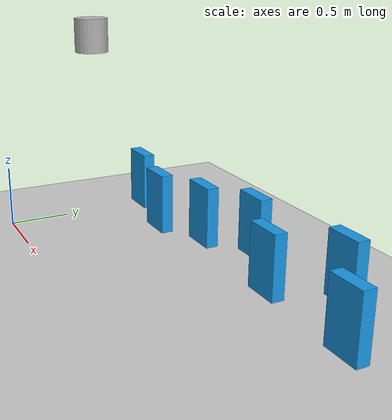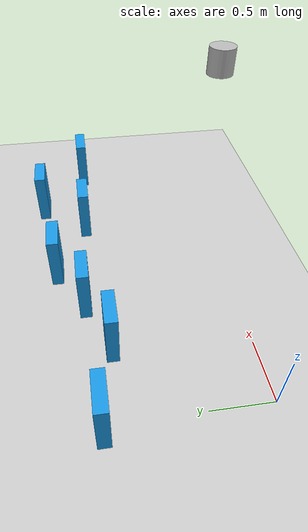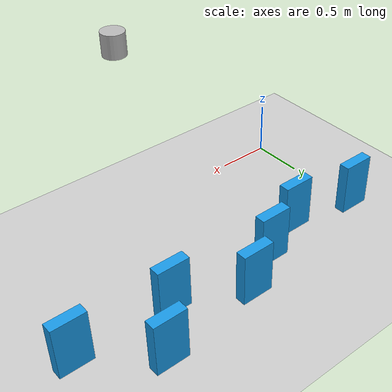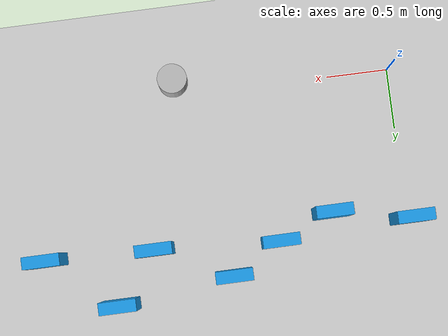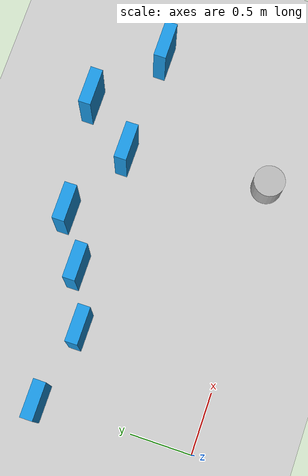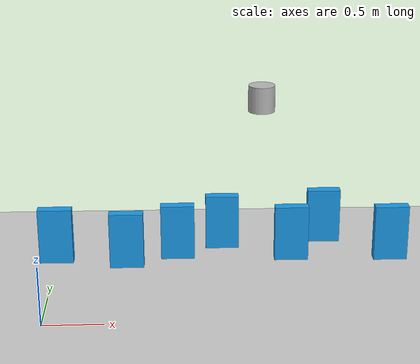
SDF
<sdf version="1.7">
 <world name="default">
  <light name="sun" type="directional">
   <pose>0 0 10 0 -0 0</pose>
   <diffuse>0.8 0.8 0.8 1</diffuse>
   <specular>0.2 0.2 0.2 1</specular>
   <attenuation>
    <range>1000</range>
    <constant>0.9</constant>
    <linear>0.01</linear>
    <quadratic>0.001</quadratic>
   </attenuation>
   <direction>-0.5 0.1 -0.9</direction>
   <spot><inner_angle>0</inner_angle><outer_angle>0</outer_angle><falloff>0</falloff></spot>
  </light>
  <model name="ground_plane">
   <static>1</static>
   <link name="link">
    <collision name="collision">
     <geometry><plane><normal>0 0 1</normal><size>100 100</size></plane></geometry>
     <surface>
      <contact><collide_bitmask>65535</collide_bitmask></contact>
      <friction><ode><mu>100</mu><mu2>50</mu2></ode></friction>
     </surface>
    </collision>
    <visual name="visual">
     <cast_shadows>0</cast_shadows>
     <geometry><plane><normal>0 0 1</normal><size>100 100</size></plane></geometry>
     <material>
      <script><uri>file://media/materials/scripts/gazebo.material</uri><name>Gazebo/Grey</name></script>
     </material>
    </visual>
   </link>
  </model>
  <gravity>0 0 -9.8</gravity>
  <magnetic_field>6e-06 2.3e-05 -4.2e-05</magnetic_field>
  <atmosphere type="adiabatic"/>
  <physics type="ode">
   <max_step_size>0.001</max_step_size>
   <real_time_factor>1</real_time_factor>
   <real_time_update_rate>1000</real_time_update_rate>
  </physics>
  <scene><ambient>0.4 0.4 0.4 1</ambient><background>0.7 0.7 0.7 1</background><shadows>1</shadows></scene>
  <spherical_coordinates>
   <surface_model>EARTH_WGS84</surface_model>
   <latitude_deg>0</latitude_deg>
   <longitude_deg>0</longitude_deg>
   <elevation>0</elevation>
   <heading_deg>0</heading_deg>
  </spherical_coordinates>
  <model name="domino">
   <static>0</static>
   <link name="base">
    <inertial>
     <pose>0 0 0.09 0 -0 0</pose>
     <mass>1.8</mass>
     <inertia><ixx>0.108</ixx><ixy>0</ixy><ixz>0</ixz><iyy>0.108</iyy><iyz>0</iyz><izz>0.054</izz></inertia>
    </inertial>
    <visual name="visual_base_link">
     <geometry><box><size>0.3 0.1 0.5</size></box><scale>1 1 1</scale></geometry>
     <material>
      <ambient>0.1 0.6 0.9 1</ambient>
      <diffuse>0.1 0.6 0.9 1</diffuse>
      <specular>0.1 0.6 0.9 1</specular>
      <emissive>0.1 0.6 0.9 0</emissive>
     </material>
    </visual>
    <collision name="collision_base_link">
     <geometry><box><size>0.1 0.2 0.5</size></box><scale>1 1 1</scale></geometry>
    </collision>
   </link>
   <pose>-0.000467 1.24863 0.25 1e-06 -0 -0.001224</pose>
  </model>
  <model name="domino_0">
   <static>0</static>
   <link name="base">
    <inertial>
     <pose>0 0 0.09 0 -0 0</pose>
     <mass>1.8</mass>
     <inertia><ixx>0.108</ixx><ixy>0</ixy><ixz>0</ixz><iyy>0.108</iyy><iyz>0</iyz><izz>0.054</izz></inertia>
    </inertial>
    <visual name="visual_base_link">
     <geometry><box><size>0.3 0.1 0.5</size></box><scale>1 1 1</scale></geometry>
     <material>
      <ambient>0.1 0.6 0.9 1</ambient>
      <diffuse>0.1 0.6 0.9 1</diffuse>
      <specular>0.1 0.6 0.9 1</specular>
      <emissive>0.1 0.6 0.9 0</emissive>
     </material>
    </visual>
    <collision name="collision_base_link">
     <geometry><box><size>0.1 0.2 0.5</size></box><scale>1 1 1</scale></geometry>
    </collision>
   </link>
   <pose>0.631072 1.12489 0.25 2e-06 -0 -0.00041</pose>
  </model>
  <model name="domino_1">
   <static>0</static>
   <link name="base">
    <inertial>
     <pose>0 0 0.09 0 -0 0</pose>
     <mass>1.8</mass>
     <inertia><ixx>0.108</ixx><ixy>0</ixy><ixz>0</ixz><iyy>0.108</iyy><iyz>0</iyz><izz>0.054</izz></inertia>
    </inertial>
    <visual name="visual_base_link">
     <geometry><box><size>0.3 0.1 0.5</size></box><scale>1 1 1</scale></geometry>
     <material>
      <ambient>0.1 0.6 0.9 1</ambient>
      <diffuse>0.1 0.6 0.9 1</diffuse>
      <specular>0.1 0.6 0.9 1</specular>
      <emissive>0.1 0.6 0.9 0</emissive>
     </material>
    </visual>
    <collision name="collision_base_link">
     <geometry><box><size>0.1 0.2 0.5</size></box><scale>1 1 1</scale></geometry>
    </collision>
   </link>
   <pose>1.07991 1.30513 0.25 2e-06 -0 0.002086</pose>
  </model>
  <model name="domino_2">
   <static>0</static>
   <link name="base">
    <inertial>
     <pose>0 0 0.09 0 -0 0</pose>
     <mass>1.8</mass>
     <inertia><ixx>0.108</ixx><ixy>0</ixy><ixz>0</ixz><iyy>0.108</iyy><iyz>0</iyz><izz>0.054</izz></inertia>
    </inertial>
    <visual name="visual_base_link">
     <geometry><box><size>0.3 0.1 0.5</size></box><scale>1 1 1</scale></geometry>
     <material>
      <ambient>0.1 0.6 0.9 1</ambient>
      <diffuse>0.1 0.6 0.9 1</diffuse>
      <specular>0.1 0.6 0.9 1</specular>
      <emissive>0.1 0.6 0.9 0</emissive>
     </material>
    </visual>
    <collision name="collision_base_link">
     <geometry><box><size>0.1 0.2 0.5</size></box><scale>1 1 1</scale></geometry>
    </collision>
   </link>
   <pose>1.4853 1.53541 0.25 -1e-06 -0 0.001149</pose>
  </model>
  <model name="domino_3">
   <static>0</static>
   <link name="base">
    <inertial>
     <pose>0 0 0.09 0 -0 0</pose>
     <mass>1.8</mass>
     <inertia><ixx>0.108</ixx><ixy>0</ixy><ixz>0</ixz><iyy>0.108</iyy><iyz>0</iyz><izz>0.054</izz></inertia>
    </inertial>
    <visual name="visual_base_link">
     <geometry><box><size>0.3 0.1 0.5</size></box><scale>1 1 1</scale></geometry>
     <material>
      <ambient>0.1 0.6 0.9 1</ambient>
      <diffuse>0.1 0.6 0.9 1</diffuse>
      <specular>0.1 0.6 0.9 1</specular>
      <emissive>0.1 0.6 0.9 0</emissive>
     </material>
    </visual>
    <collision name="collision_base_link">
     <geometry><box><size>0.1 0.2 0.5</size></box><scale>1 1 1</scale></geometry>
    </collision>
   </link>
   <pose>2.09504 1.24548 0.25 -2e-06 -0 -0.001921</pose>
  </model>
  <model name="domino_4">
   <static>0</static>
   <link name="base">
    <inertial>
     <pose>0 0 0.09 0 -0 0</pose>
     <mass>1.8</mass>
     <inertia><ixx>0.108</ixx><ixy>0</ixy><ixz>0</ixz><iyy>0.108</iyy><iyz>0</iyz><izz>0.054</izz></inertia>
    </inertial>
    <visual name="visual_base_link">
     <geometry><box><size>0.3 0.1 0.5</size></box><scale>1 1 1</scale></geometry>
     <material>
      <ambient>0.1 0.6 0.9 1</ambient>
      <diffuse>0.1 0.6 0.9 1</diffuse>
      <specular>0.1 0.6 0.9 1</specular>
      <emissive>0.1 0.6 0.9 0</emissive>
     </material>
    </visual>
    <collision name="collision_base_link">
     <geometry><box><size>0.1 0.2 0.5</size></box><scale>1 1 1</scale></geometry>
    </collision>
   </link>
   <pose>2.42998 1.65601 0.25 2e-06 -0 5.9e-05</pose>
  </model>
  <model name="domino_5">
   <static>0</static>
   <link name="base">
    <inertial>
     <pose>0 0 0.09 0 -0 0</pose>
     <mass>1.8</mass>
     <inertia><ixx>0.108</ixx><ixy>0</ixy><ixz>0</ixz><iyy>0.108</iyy><iyz>0</iyz><izz>0.054</izz></inertia>
    </inertial>
    <visual name="visual_base_link">
     <geometry><box><size>0.3 0.1 0.5</size></box><scale>1 1 1</scale></geometry>
     <material>
      <ambient>0.1 0.6 0.9 1</ambient>
      <diffuse>0.1 0.6 0.9 1</diffuse>
      <specular>0.1 0.6 0.9 1</specular>
      <emissive>0.1 0.6 0.9 0</emissive>
     </material>
    </visual>
    <collision name="collision_base_link">
     <geometry><box><size>0.1 0.2 0.5</size></box><scale>1 1 1</scale></geometry>
    </collision>
   </link>
   <pose>2.98395 1.2216 0.25 -1e-06 -0 0.001191</pose>
  </model>
  <model name="domino_6">
   <static>1</static>
   <link name="base_light">
    <inertial>
     <pose>0 0 0.09 0 -0 0</pose>
     <mass>1.8</mass>
     <inertia><ixx>0.108</ixx><ixy>0</ixy><ixz>0</ixz><iyy>0.108</iyy><iyz>0</iyz><izz>0.054</izz></inertia>
    </inertial>
    <visual name="visual">
     <geometry><cylinder><length>0.2</length><radius>0.1</radius></cylinder></geometry>
    </visual>
    <light name="lighter" type="spot">
     <diffuse>0.5 0.5 0.5 1</diffuse>
     <specular>0.1 0.1 0.1 1</specular>
     <direction>0 0 -1</direction>
     <attenuation>
      <range>500</range>
      <constant>0.1</constant>
      <linear>0.01</linear>
      <quadratic>0.001</quadratic>
     </attenuation>
     <cast_shadows>0</cast_shadows>
     <spot><inner_angle>0.6</inner_angle><outer_angle>1</outer_angle><falloff>1</falloff></spot>
    </light>
   </link>
   <plugin name="light_control_plugin" filename="liblight_control_plugin.so"/>
   <pose>1.73313 0.147391 1.79465 0 -0 0</pose>
  </model>
 </world>
</sdf>
